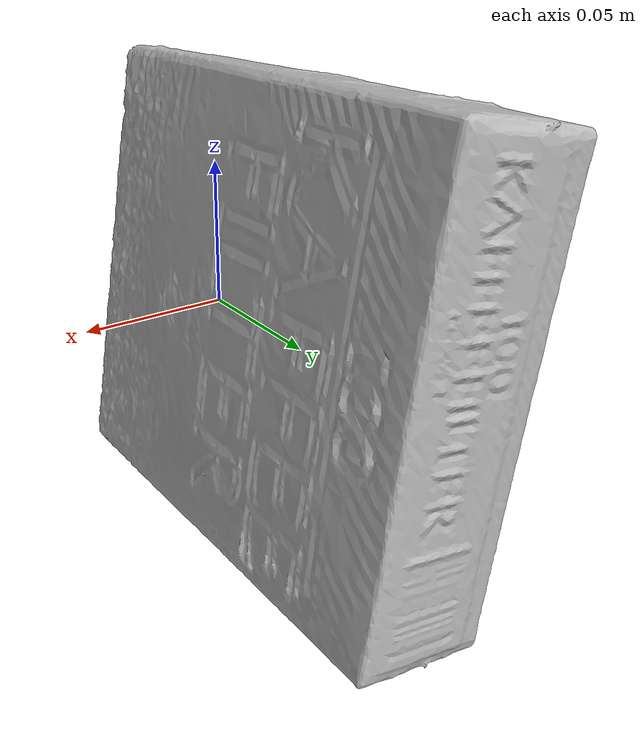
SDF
<?xml version='1.0'?>
<sdf version="1.4">
  <model name="CoffeeFilters2">
    <static>false</static>
    <link name="link">
      <inertial>
        <pose>0.0011287064627269812 0.04489255886727133 0.009449321773509005 1.57279493428838 0.17996032978132812 -3.124037755123273</pose>
        <mass>0.11409031492479876</mass>
        <inertia>
          <ixx>0.0004504118466812173</ixx>
          <ixy>-3.264476665755707e-20</ixy>
          <ixz>1.9812171744286923e-20</ixz>
          <iyy>0.00026682705275197057</iyy>
          <iyz>-1.0483166472165181e-19</iyz>
          <izz>0.00022590244048478953</izz>
        </inertia>
      </inertial>
      <collision name="collision">
        <geometry>
          <mesh>
            <!-- Use a downsampled mesh for collisions -->
            <uri>model:///CoffeeFilters2/CoffeeFilters2_250_collision.obj</uri>
	        </mesh>
        </geometry>
        <surface>
      </surface>
      </collision>
      <visual name="visual">
        <geometry>
          <mesh>
            <uri>model:///CoffeeFilters2/CoffeeFilters2_25k_tex.obj</uri>
	        </mesh>
        </geometry>
        <material>
          <script>
            <uri>model:///CoffeeFilters2/CoffeeFilters2.material</uri>
            <name>CoffeeFilters2</name>
          </script>
        </material>
      </visual>
    </link>
  </model>
</sdf>
